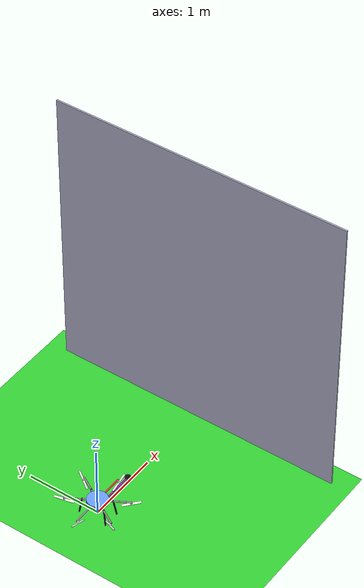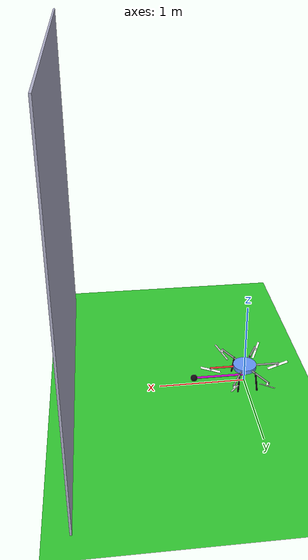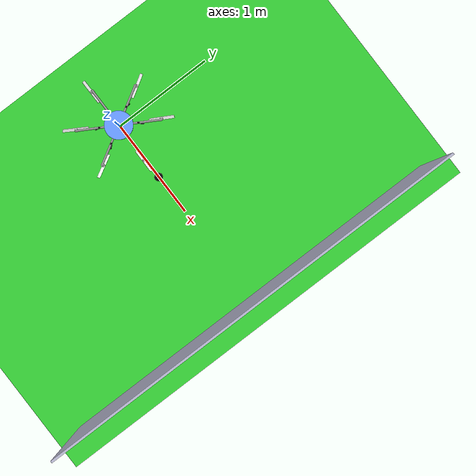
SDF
<?xml version="1.0"?>
<sdf version="1.5">
  <world name="mrsim">
    <physics name='1ms' type='unused'>
      <max_step_size>0.002000</max_step_size>
      <real_time_factor>1.000000</real_time_factor>
      <real_time_update_rate>500.000000</real_time_update_rate>
      <gravity>0 0 -9.81</gravity>
      <magnetic_field>23.816e-6 -0.41e-6 -39.829e-6</magnetic_field>
    </physics>

    <light type="directional" name="sun">
      <cast_shadows>true</cast_shadows>
      <pose>0 0 10 0 0 0</pose>
      <diffuse>0.8 0.8 0.8 1</diffuse>
      <specular>0.2 0.2 0.2 1</specular>
      <attenuation><range>1000</range><constant>0.9</constant><linear>0.01</linear><quadratic>0.001</quadratic></attenuation>
      <direction>0.5 0.1 -0.9</direction>
    </light>

    <model name="ground_plane">
      <static>true</static>
      <link name="link">
        <collision name="collision">
          <geometry><plane><normal>0 0 1.0</normal><size>100 100</size></plane></geometry>
        </collision>
        <visual name="visual">
          <geometry><plane><normal>0 0 1.0</normal><size>100 100</size></plane></geometry>
          <material><ambient>0.2 0.8 0.2 1</ambient><diffuse>0.2 0.8 0.2 1</diffuse><specular>0.2 0.8 0.2 1</specular></material>
        </visual>
      </link>
    </model>

    <!-- Thin static wall at x=2.0 for contact inspection task -->
    <!-- Wall is 4m wide (Y) and 4m tall (Z), 2cm thick along X -->
    <model name="contact_wall">
      <static>true</static>
      <pose>2.01 0 2.0 0 0 0</pose>
      <link name="wall">
        <collision name="collision">
          <geometry>
            <box><size>0.02 4.0 4.0</size></box>
          </geometry>
          <surface>
            <friction>
              <ode>
                <mu>0.3</mu>
                <mu2>0.3</mu2>
              </ode>
            </friction>
            <contact>
              <ode>
                <kp>500.0</kp>
                <kd>50.0</kd>
                <max_vel>0.0</max_vel>
                <min_depth>0.001</min_depth>
              </ode>
            </contact>
          </surface>
        </collision>
        <visual name="visual">
          <geometry>
            <box><size>0.02 4.0 4.0</size></box>
          </geometry>
          <material>
            <ambient>0.7 0.7 0.8 1</ambient>
            <diffuse>0.7 0.7 0.8 1</diffuse>
            <specular>0.3 0.3 0.4 1</specular>
          </material>
        </visual>
      </link>
    </model>

    <include>
      <uri>model://mrsim-tilthex</uri>
      <name>hr6</name>
      <pose>0 0 0.21 0 0 0</pose>
    </include>

    <plugin name="gz::sim::systems::Sensors" filename="gz-sim-sensors-system">
      <render_engine>ogre2</render_engine>
    </plugin>
    <plugin name="gz::sim::systems::Contact" filename="gz-sim-contact-system"/>

    <plugin name="optitrack" filename="optitrack-gazebo.so">
      <hz>100</hz>
      <port>1509</port>
      <publish>
        <link>hr6::base</link>
        <name>HR_6</name>
      </publish>
    </plugin>
  </world>
</sdf>

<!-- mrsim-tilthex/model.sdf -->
<sdf version="1.5">
  <model name="mrsim-tilthex">
    <link name="base">
      <inertial>
        <mass>2.3</mass>
        <inertia>
          <ixx>0.0115</ixx><ixy>0</ixy><ixz>0</ixz>
          <iyy>0.0114</iyy><iyz>0</iyz>
          <izz>0.0194</izz>
        </inertia>
      </inertial>

      <collision name="base">
	<pose>0 0 -0.05 0 0 0</pose>
        <geometry>
          <cylinder><radius>0.1354</radius><length>0.15</length></cylinder>
        </geometry>
      </collision>
      <!-- three spheres to make contact stable -->
      <collision name="land_1">
        <pose>0.2 0 -0.21 0 0 0</pose>
        <geometry>
          <sphere><radius>0.03</radius></sphere>
        </geometry>
      </collision>
      <collision name="land_2">
        <pose>-0.1 0.173 -0.21 0 0 0</pose>
        <geometry>
          <sphere><radius>0.03</radius></sphere>
        </geometry>
      </collision>
      <collision name="land_3">
        <pose>-0.1 -0.173 -0.21 0 0 0</pose>
        <geometry>
          <sphere><radius>0.03</radius></sphere>
        </geometry>
      </collision>

      <visual name="body">
        <geometry>
          <cylinder><radius>0.1354</radius><length>0.05</length></cylinder>
        </geometry>
        <material>
          <ambient>0.4 0.6 1.0 1</ambient>
          <diffuse>0.4 0.6 1.0 1</diffuse>
        </material>
      </visual>

      <visual name="lander-1">
        <pose>0.1025 0.1776 -0.11 3.1416 -0.1736 1.0472</pose>
        <geometry>
          <cylinder><radius>0.01</radius><length>0.25</length></cylinder>
        </geometry>
        <material>
          <ambient>0 0 0 1.0</ambient>
          <diffuse>0 0 0 1.0</diffuse>
        </material>
      </visual>

      <visual name="lander-2">
        <pose>-0.1025 0.1776 -0.11 3.1416 -0.1736 2.0944</pose>
        <geometry>
          <cylinder><radius>0.01</radius><length>0.25</length></cylinder>
        </geometry>
        <material>
          <ambient>0 0 0 1.0</ambient>
          <diffuse>0 0 0 1.0</diffuse>
        </material>
      </visual>

      <visual name="lander-3">
       <pose>-0.1025 -0.1776 -0.11 3.1416 0.1736 1.0472</pose>
        <geometry>
          <cylinder><radius>0.01</radius><length>0.25</length></cylinder>
        </geometry>
        <material>
          <ambient>0 0 0 1.0</ambient>
          <diffuse>0 0 0 1.0</diffuse>
        </material>
      </visual>

      <visual name="lander-4">
        <pose>0.1025 -0.1776 -0.11 3.1416 0.1736 2.0944</pose>
        <geometry>
          <cylinder><radius>0.01</radius><length>0.25</length></cylinder>
        </geometry>
        <material>
          <ambient>0 0 0 1.0</ambient>
          <diffuse>0 0 0 1.0</diffuse>
        </material>
      </visual>

      <visual name="arm-1">
        <pose>0.2150 0 0 0 1.5708 0</pose>
        <geometry>
          <cylinder><radius>0.01</radius><length>0.38998</length></cylinder>
        </geometry>
        <material>
          <ambient>1.0 0.2 0.2 1.0</ambient>
          <diffuse>1.0 0.2 0.2 1.0</diffuse>
        </material>
      </visual>
      <visual name="arm-2">
        <pose>0.1025 0.1776 0 0 1.5708 1.0472</pose>
        <geometry>
          <cylinder><radius>0.01</radius><length>0.40998</length></cylinder>
        </geometry>
        <material>
          <ambient>0.6 0.6 0.6 1</ambient>
          <diffuse>0.6 0.6 0.6 1</diffuse>
        </material>
      </visual>
      <visual name="arm-3">
        <pose>-0.1025 0.1776 0 0 1.5708 2.0944</pose>
        <geometry>
          <cylinder><radius>0.01</radius><length>0.40998</length></cylinder>
        </geometry>
        <material>
          <ambient>0.6 0.6 0.6 1</ambient>
          <diffuse>0.6 0.6 0.6 1</diffuse>
        </material>
      </visual>
      <visual name="arm-4">
        <pose>-0.2150 0 0 0 1.5708 0</pose>
        <geometry>
          <cylinder><radius>0.01</radius><length>0.38998</length></cylinder>
        </geometry>
        <material>
          <ambient>0.6 0.6 0.6 1</ambient>
          <diffuse>0.6 0.6 0.6 1</diffuse>
        </material>
      </visual>
      <visual name="arm-5">
        <pose>-0.1025 -0.1776 0 0 1.5708 -2.0944</pose>
        <geometry>
          <cylinder><radius>0.01</radius><length>0.40998</length></cylinder>
        </geometry>
        <material>
          <ambient>0.6 0.6 0.6 1</ambient>
          <diffuse>0.6 0.6 0.6 1</diffuse>
        </material>
      </visual>
      <visual name="arm-6">
        <pose>0.1025 -0.1776 0 0 1.5708 -1.0472</pose>
        <geometry>
          <cylinder><radius>0.01</radius><length>0.40998</length></cylinder>
        </geometry>
        <material>
          <ambient>0.6 0.6 0.6 1</ambient>
          <diffuse>0.6 0.6 0.6 1</diffuse>
        </material>
      </visual>

      <!-- End-effector (assignment 06a)                                 -->
      <!-- L-shape: vertical bar from disk bottom, then horizontal bar   -->
      <!-- along body x axis. Tip extends past arm length (0.39m).       -->
      <!-- Same mounting logic as landers: link-frame, pose offsets.     -->

      <!-- Vertical bar: short stub from disk bottom (z=-0.025) to z=-0.125 -->
      <!-- length 0.10, midpoint z=-0.075, Z-aligned (no rotation)          -->
      <visual name="ee-vbar">
        <pose>0 0 -0.075 0 0 0</pose>
        <geometry>
          <cylinder><radius>0.012</radius><length>0.10</length></cylinder>
        </geometry>
        <material>
          <ambient>0.6 0.0 0.6 1</ambient>
          <diffuse>0.8 0.0 0.8 1</diffuse>
          <specular>0.5 0.0 0.5 1</specular>
          <emissive>0.2 0.0 0.2 1</emissive>
        </material>
      </visual>
      <collision name="ee-vbar-col">
        <pose>0 0 -0.075 0 0 0</pose>
        <geometry>
          <cylinder><radius>0.012</radius><length>0.10</length></cylinder>
        </geometry>
      </collision>

      <!-- Horizontal bar: from x=0 to x=0.6 at z=-0.125, X-aligned         -->
      <!-- length 0.6, midpoint x=0.3 (=length/2 so bar starts at x=0)      -->
      <visual name="ee-hbar">
        <pose>0.3 0 -0.125 0 1.5708 0</pose>
        <geometry>
          <cylinder><radius>0.012</radius><length>0.60</length></cylinder>
        </geometry>
        <material>
          <ambient>0.6 0.0 0.6 1</ambient>
          <diffuse>0.8 0.0 0.8 1</diffuse>
          <specular>0.5 0.0 0.5 1</specular>
          <emissive>0.2 0.0 0.2 1</emissive>
        </material>
      </visual>
      <collision name="ee-hbar-col">
        <pose>0.3 0 -0.125 0 1.5708 0</pose>
        <geometry>
          <cylinder><radius>0.012</radius><length>0.6</length></cylinder>
        </geometry>
      </collision>

      <!-- Contact sensor tip: black sphere with friction matching wall    -->
      <visual name="ee-tip">
        <pose>0.6 0 -0.125 0 0 0</pose>
        <geometry>
          <sphere><radius>0.04</radius></sphere>
        </geometry>
        <material>
          <ambient>0.0 0.0 0.0 1</ambient>
          <diffuse>0.05 0.05 0.05 1</diffuse>
        </material>
      </visual>
      <collision name="ee-tip-col">
        <pose>0.6 0 -0.125 0 0 0</pose>
        <geometry>
          <sphere><radius>0.04</radius></sphere>
        </geometry>
        <surface>
          <friction>
            <ode><mu>0.3</mu><mu2>0.3</mu2></ode>
          </friction>
        </surface>
      </collision>

      <!-- Contact sensor on end-effector tip -->
      <sensor name="ee_contact_sensor" type="contact">
        <always_on>true</always_on>
        <update_rate>100</update_rate>
        <contact>
          <collision>ee-tip-col</collision>
        </contact>
      </sensor>
    </link>

    <include>
      <uri>model://mrsim-rotor</uri>
      <name>rotor-1</name>
      <pose>0.38998 0 0 2.7925 -0.3491 0</pose>
    </include>
    <joint name="motor-1" type="revolute">
      <parent>base</parent>
      <child>rotor-1::propeller</child>
      <axis><xyz>0 0 -1</xyz></axis>
    </joint>

    <include>
      <uri>model://mrsim-rotor</uri>
      <name>rotor-2</name>
      <pose>0.195 0.3377 0 -2.7925 -0.3491 1.0472</pose>
    </include>
    <joint name="motor-2" type="revolute">
      <parent>base</parent>
      <child>rotor-2::propeller</child>
      <axis><xyz>0 0 -1</xyz></axis>
    </joint>

    <include>
      <uri>model://mrsim-rotor</uri>
      <name>rotor-3</name>
      <pose>-0.195 0.3377 0 2.7925 -0.3491 2.0944</pose>
    </include>
    <joint name="motor-3" type="revolute">
      <parent>base</parent>
      <child>rotor-3::propeller</child>
      <axis><xyz>0 0 -1</xyz></axis>
    </joint>

    <include>
      <uri>model://mrsim-rotor</uri>
      <name>rotor-4</name>
      <pose>-0.38998 0 0 -3.4907 0.3491 0</pose>
    </include>
    <joint name="motor-4" type="revolute">
      <parent>base</parent>
      <child>rotor-4::propeller</child>
      <axis><xyz>0 0 -1</xyz></axis>
    </joint>

    <include>
      <uri>model://mrsim-rotor</uri>
      <name>rotor-5</name>
      <pose>-0.195 -0.3377 0 -2.7925 0.3491 1.0472</pose>
    </include>
    <joint name="motor-5" type="revolute">
      <parent>base</parent>
      <child>rotor-5::propeller</child>
      <axis><xyz>0 0 -1</xyz></axis>
    </joint>

    <include>
      <uri>model://mrsim-rotor</uri>
      <name>rotor-6</name>
      <pose>0.195 -0.3377 0 2.7925 0.3491 2.0944</pose>
    </include>
    <joint name="motor-6" type="revolute">
      <parent>base</parent>
      <child>rotor-6::propeller</child>
      <axis><xyz>0 0 -1</xyz></axis>
    </joint>

    <plugin name="mrsim" filename="mrsim-gazebo.so">
      <link>base</link>

      <rotors>
        <noise>0.03</noise>
        <cf>9.9016e-4</cf>
        <ct>1.9e-5</ct>
        <vfxy>0.5</vfxy><vfz>0.5</vfz>
        <vtxy>0.5</vtxy><vtz>0.5</vtz>

        <rotor><joint spin="cw">motor-1</joint></rotor>
        <rotor><joint spin="ccw">motor-2</joint></rotor>
        <rotor><joint spin="cw">motor-3</joint></rotor>
        <rotor><joint spin="ccw">motor-4</joint></rotor>
        <rotor><joint spin="cw">motor-5</joint></rotor>
        <rotor><joint spin="ccw">motor-6</joint></rotor>
      </rotors>
    </plugin>
</model>
</sdf>

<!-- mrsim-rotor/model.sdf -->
<sdf version="1.5">
  <model name="mrsim-rotor">
    <link name="propeller">
      <inertial>
        <mass>0.07</mass>
        <inertia>
          <ixx>4e-5</ixx><ixy>0</ixy><ixz>0</ixz>
          <iyy>4e-5</iyy><iyz>0</iyz>
          <izz>8e-5</izz>
        </inertia>
      </inertial>

      <collision name="collision">
        <pose>0 0 0.04 0 0 0</pose>
        <geometry>
          <cylinder><radius>0.127</radius><length>0.002</length></cylinder>
        </geometry>
      </collision>

      <visual name="motor">
        <pose>0 0 0.015 0 0 0</pose>
        <geometry>
          <cylinder><radius>0.015</radius><length>0.03</length></cylinder>
        </geometry>
        <material>
          <ambient>0.1 0.1 0.1 1</ambient>
          <diffuse>1.0 1.0 1.0 1</diffuse>
        </material>
      </visual>

      <visual name="axle">
        <pose>0 0 0.035 0 0 0</pose>
        <geometry>
          <cylinder><radius>0.002</radius><length>0.01</length></cylinder>
        </geometry>
        <material>
          <ambient>0.1 0.1 0.1 1</ambient>
          <diffuse>1.0 1.0 1.0 1</diffuse>
        </material>
      </visual>

      <visual name="blade">
        <pose>0 0 0.04 0 0 0</pose>
        <geometry>
          <box><size>0.25 0.03 0.002</size></box>
        </geometry>
        <material>
          <ambient>0.1 0.1 0.1 1</ambient>
          <diffuse>1.0 1.0 1.0 1</diffuse>
        </material>
      </visual>
    </link>
  </model>
</sdf>
